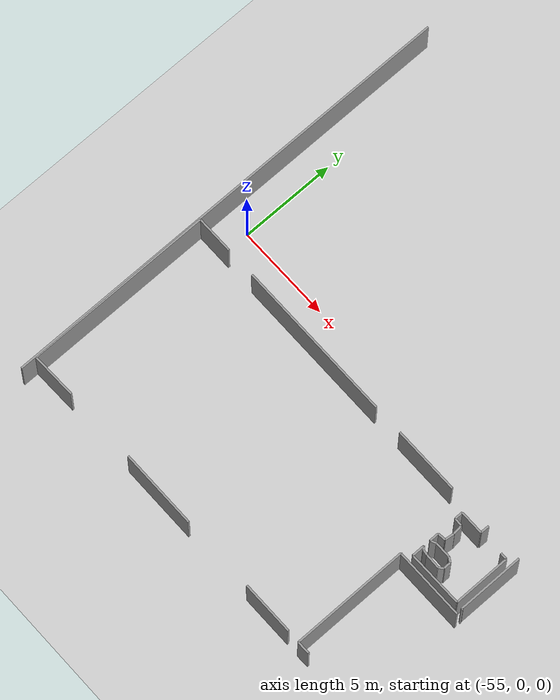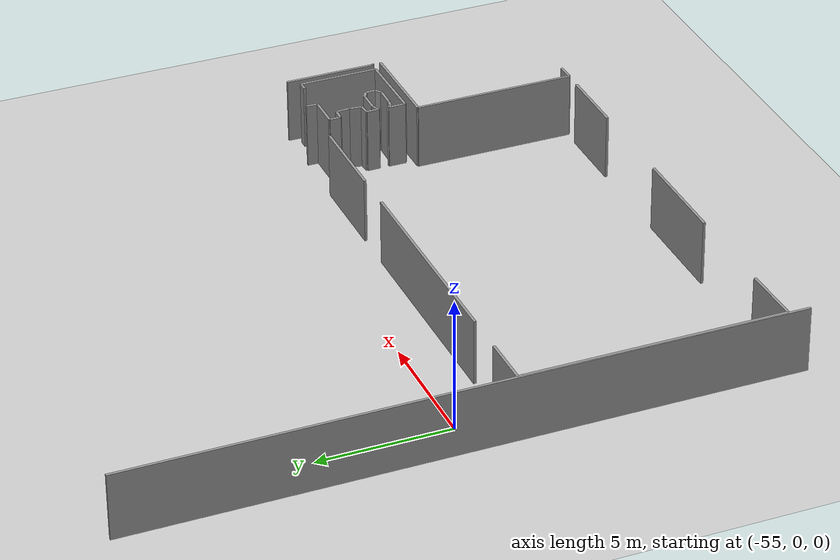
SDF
<sdf version="1.6">
 <world name="default">
  <model name="ground_plane">
   <static>1</static>
   <link name="link">
    <collision name="collision">
     <geometry><plane><normal>0 0 1</normal><size>100 100</size></plane></geometry>
     <surface><friction><ode><mu>100</mu><mu2>50</mu2></ode></friction></surface>
    </collision>
    <visual name="visual">
     <cast_shadows>0</cast_shadows>
     <geometry><plane><normal>0 0 1</normal><size>100 100</size></plane></geometry>
     <material>
      <script><uri>file://media/materials/scripts/gazebo.material</uri><name>Gazebo/Grey</name></script>
     </material>
    </visual>
   </link>
  </model>
  <model name="0510034692_Layout1">
   <static>1</static>
   <link name="Wall_15">
    <collision name="Wall_15_Collision">
     <geometry><box><size>9.90078531739 0.1 2.5</size></box></geometry>
     <pose>4.9503926587 0 1.25 0 0 0</pose>
    </collision>
    <visual name="Wall_15_Visual">
     <pose>4.9503926587 0 1.25 0 0 0</pose>
     <geometry><box><size>9.90078531739 0.1 2.5</size></box></geometry>
     <material>
      <script><uri>file://media/materials/scripts/gazebo.material</uri><name>Gazebo/Grey</name></script>
      <ambient>1 1 1 1</ambient>
     </material>
    </visual>
    <pose>0.0498674642077 -23.9970358678 0 0 0 1.57079632679</pose>
   </link>
   <link name="Wall_16">
    <collision name="Wall_16_Collision">
     <geometry><box><size>1.9633569305 0.1 2.5</size></box></geometry>
     <pose>0.981678465249 0 1.25 0 0 0</pose>
    </collision>
    <visual name="Wall_16_Visual">
     <pose>0.981678465249 0 1.25 0 0 0</pose>
     <geometry><box><size>1.9633569305 0.1 2.5</size></box></geometry>
     <material>
      <script><uri>file://media/materials/scripts/gazebo.material</uri><name>Gazebo/Grey</name></script>
      <ambient>1 1 1 1</ambient>
     </material>
    </visual>
    <pose>0.0498674642077 -14.0962505504 0 0 0 0.0</pose>
   </link>
   <link name="Wall_17">
    <collision name="Wall_17_Collision">
     <geometry><box><size>8.42544433433 0.1 2.5</size></box></geometry>
     <pose>4.21272216717 0 1.25 0 0 0</pose>
    </collision>
    <visual name="Wall_17_Visual">
     <pose>4.21272216717 0 1.25 0 0 0</pose>
     <geometry><box><size>8.42544433433 0.1 2.5</size></box></geometry>
     <material>
      <script><uri>file://media/materials/scripts/gazebo.material</uri><name>Gazebo/Grey</name></script>
      <ambient>1 1 1 1</ambient>
     </material>
    </visual>
    <pose>3.61126725535 -14.0962505504 0 0 0 0.0</pose>
   </link>
   <link name="Wall_18">
    <collision name="Wall_18_Collision">
     <geometry><box><size>3.50214252451 0.1 2.5</size></box></geometry>
     <pose>1.75107126226 0 1.25 0 0 0</pose>
    </collision>
    <visual name="Wall_18_Visual">
     <pose>1.75107126226 0 1.25 0 0 0</pose>
     <geometry><box><size>3.50214252451 0.1 2.5</size></box></geometry>
     <material>
      <script><uri>file://media/materials/scripts/gazebo.material</uri><name>Gazebo/Grey</name></script>
      <ambient>1 1 1 1</ambient>
     </material>
    </visual>
    <pose>13.6082346029 -14.0962505504 0 0 0 0.0</pose>
   </link>
   <link name="Wall_20">
    <collision name="Wall_20_Collision">
     <geometry><box><size>2.76897660036 0.1 2.5</size></box></geometry>
     <pose>1.38448830018 0 1.25 0 0 0</pose>
    </collision>
    <visual name="Wall_20_Visual">
     <pose>1.38448830018 0 1.25 0 0 0</pose>
     <geometry><box><size>2.76897660036 0.1 2.5</size></box></geometry>
     <material>
      <script><uri>file://media/materials/scripts/gazebo.material</uri><name>Gazebo/Grey</name></script>
      <ambient>1 1 1 1</ambient>
     </material>
    </visual>
    <pose>17.1103771275 -23.945138176 0 0 0 3.14159265359</pose>
   </link>
   <link name="Wall_21">
    <collision name="Wall_21_Collision">
     <geometry><box><size>4.11057634353 0.1 2.5</size></box></geometry>
     <pose>2.05528817177 0 1.25 0 0 0</pose>
    </collision>
    <visual name="Wall_21_Visual">
     <pose>2.05528817177 0 1.25 0 0 0</pose>
     <geometry><box><size>4.11057634353 0.1 2.5</size></box></geometry>
     <material>
      <script><uri>file://media/materials/scripts/gazebo.material</uri><name>Gazebo/Grey</name></script>
      <ambient>1 1 1 1</ambient>
     </material>
    </visual>
    <pose>10.4239495793 -23.945138176 0 0 0 3.14159265359</pose>
   </link>
   <link name="Wall_22">
    <collision name="Wall_22_Collision">
     <geometry><box><size>2.36578439888 0.1 2.5</size></box></geometry>
     <pose>1.18289219944 0 1.25 0 0 0</pose>
    </collision>
    <visual name="Wall_22_Visual">
     <pose>1.18289219944 0 1.25 0 0 0</pose>
     <geometry><box><size>2.36578439888 0.1 2.5</size></box></geometry>
     <material>
      <script><uri>file://media/materials/scripts/gazebo.material</uri><name>Gazebo/Grey</name></script>
      <ambient>1 1 1 1</ambient>
     </material>
    </visual>
    <pose>2.41508256047 -23.945138176 0 0 0 -3.11965411385</pose>
   </link>
   <link name="Wall_64">
    <collision name="Wall_64_Collision">
     <geometry><box><size>6.12748052568 0.1 2.5</size></box></geometry>
     <pose>3.06374026284 0 1.25 0 0 0</pose>
    </collision>
    <visual name="Wall_64_Visual">
     <pose>3.06374026284 0 1.25 0 0 0</pose>
     <geometry><box><size>6.12748052568 0.1 2.5</size></box></geometry>
     <material>
      <script><uri>file://media/materials/scripts/gazebo.material</uri><name>Gazebo/Grey</name></script>
      <ambient>1 1 1 1</ambient>
     </material>
    </visual>
    <pose>17.7987511563 -23.9681051252 0 0 0 1.57079632679</pose>
   </link>
   <link name="Wall_65">
    <collision name="Wall_65_Collision">
     <geometry><box><size>3.73308090837 0.1 2.5</size></box></geometry>
     <pose>1.86654045419 0 1.25 0 0 0</pose>
    </collision>
    <visual name="Wall_65_Visual">
     <pose>1.86654045419 0 1.25 0 0 0</pose>
     <geometry><box><size>3.73308090837 0.1 2.5</size></box></geometry>
     <material>
      <script><uri>file://media/materials/scripts/gazebo.material</uri><name>Gazebo/Grey</name></script>
      <ambient>1 1 1 1</ambient>
     </material>
    </visual>
    <pose>17.7987511563 -17.8406245995 0 0 0 0.0</pose>
   </link>
   <link name="Wall_71">
    <collision name="Wall_71_Collision">
     <geometry><box><size>0.668838914309 0.1 2.5</size></box></geometry>
     <pose>0.334419457155 0 1.25 0 0 0</pose>
    </collision>
    <visual name="Wall_71_Visual">
     <pose>0.334419457155 0 1.25 0 0 0</pose>
     <geometry><box><size>0.668838914309 0.1 2.5</size></box></geometry>
     <material>
      <script><uri>file://media/materials/scripts/gazebo.material</uri><name>Gazebo/Grey</name></script>
      <ambient>1 1 1 1</ambient>
     </material>
    </visual>
    <pose>18.4674573557 -23.9547817569 0 0 0 -3.12167119071</pose>
   </link>
   <link name="Wall_72">
    <collision name="Wall_72_Collision">
     <geometry><box><size>3.45988841362 0.1 2.5</size></box></geometry>
     <pose>1.72994420681 0 1.25 0 0 0</pose>
    </collision>
    <visual name="Wall_72_Visual">
     <pose>1.72994420681 0 1.25 0 0 0</pose>
     <geometry><box><size>3.45988841362 0.1 2.5</size></box></geometry>
     <material>
      <script><uri>file://media/materials/scripts/gazebo.material</uri><name>Gazebo/Grey</name></script>
      <ambient>1 1 1 1</ambient>
     </material>
    </visual>
    <pose>21.483994828 -17.5359635777 0 0 0 1.57079632679</pose>
   </link>
   <link name="Wall_79">
    <collision name="Wall_79_Collision">
     <geometry><box><size>0.0748601243903 0.1 2.5</size></box></geometry>
     <pose>0.0374300621951 0 1.25 0 0 0</pose>
    </collision>
    <visual name="Wall_79_Visual">
     <pose>0.0374300621951 0 1.25 0 0 0</pose>
     <geometry><box><size>0.0748601243903 0.1 2.5</size></box></geometry>
     <material>
      <script><uri>file://media/materials/scripts/gazebo.material</uri><name>Gazebo/Grey</name></script>
      <ambient>1 1 1 1</ambient>
     </material>
    </visual>
    <pose>21.5503578911 -17.5013228201 0 0 0 -2.66050935902</pose>
   </link>
   <link name="Wall_80">
    <collision name="Wall_80_Collision">
     <geometry><box><size>0.668833088649 0.1 2.5</size></box></geometry>
     <pose>0.334416544324 0 1.25 0 0 0</pose>
    </collision>
    <visual name="Wall_80_Visual">
     <pose>0.334416544324 0 1.25 0 0 0</pose>
     <geometry><box><size>0.668833088649 0.1 2.5</size></box></geometry>
     <material>
      <script><uri>file://media/materials/scripts/gazebo.material</uri><name>Gazebo/Grey</name></script>
      <ambient>1 1 1 1</ambient>
     </material>
    </visual>
    <pose>18.2328391844 -17.5053832752 0 0 0 1.57079632679</pose>
   </link>
   <link name="Wall_81">
    <collision name="Wall_81_Collision">
     <geometry><box><size>0.196521543762 0.1 2.5</size></box></geometry>
     <pose>0.098260771881 0 1.25 0 0 0</pose>
    </collision>
    <visual name="Wall_81_Visual">
     <pose>0.098260771881 0 1.25 0 0 0</pose>
     <geometry><box><size>0.196521543762 0.1 2.5</size></box></geometry>
     <material>
      <script><uri>file://media/materials/scripts/gazebo.material</uri><name>Gazebo/Grey</name></script>
      <ambient>1 1 1 1</ambient>
     </material>
    </visual>
    <pose>18.2328391844 -16.8365501866 0 0 0 -0.831070219661</pose>
   </link>
   <link name="Wall_82">
    <collision name="Wall_82_Collision">
     <geometry><box><size>0.273911716556 0.1 2.5</size></box></geometry>
     <pose>0.136955858278 0 1.25 0 0 0</pose>
    </collision>
    <visual name="Wall_82_Visual">
     <pose>0.136955858278 0 1.25 0 0 0</pose>
     <geometry><box><size>0.273911716556 0.1 2.5</size></box></geometry>
     <material>
      <script><uri>file://media/materials/scripts/gazebo.material</uri><name>Gazebo/Grey</name></script>
      <ambient>1 1 1 1</ambient>
     </material>
    </visual>
    <pose>18.3653115321 -16.9817114564 0 0 0 -0.138490359188</pose>
   </link>
   <link name="Wall_83">
    <collision name="Wall_83_Collision">
     <geometry><box><size>0.757257154565 0.1 2.5</size></box></geometry>
     <pose>0.378628577282 0 1.25 0 0 0</pose>
    </collision>
    <visual name="Wall_83_Visual">
     <pose>0.378628577282 0 1.25 0 0 0</pose>
     <geometry><box><size>0.757257154565 0.1 2.5</size></box></geometry>
     <material>
      <script><uri>file://media/materials/scripts/gazebo.material</uri><name>Gazebo/Grey</name></script>
      <ambient>1 1 1 1</ambient>
     </material>
    </visual>
    <pose>18.6366006885 -17.0195244446 0 0 0 -0.0249696668334</pose>
   </link>
   <link name="Wall_84">
    <collision name="Wall_84_Collision">
     <geometry><box><size>0.273049124769 0.1 2.5</size></box></geometry>
     <pose>0.136524562384 0 1.25 0 0 0</pose>
    </collision>
    <visual name="Wall_84_Visual">
     <pose>0.136524562384 0 1.25 0 0 0</pose>
     <geometry><box><size>0.273049124769 0.1 2.5</size></box></geometry>
     <material>
      <script><uri>file://media/materials/scripts/gazebo.material</uri><name>Gazebo/Grey</name></script>
      <ambient>1 1 1 1</ambient>
     </material>
    </visual>
    <pose>19.3936217864 -17.0384309386 0 0 0 0.703484929254</pose>
   </link>
   <link name="Wall_85">
    <collision name="Wall_85_Collision">
     <geometry><box><size>0.372382338041 0.1 2.5</size></box></geometry>
     <pose>0.18619116902 0 1.25 0 0 0</pose>
    </collision>
    <visual name="Wall_85_Visual">
     <pose>0.18619116902 0 1.25 0 0 0</pose>
     <geometry><box><size>0.372382338041 0.1 2.5</size></box></geometry>
     <material>
      <script><uri>file://media/materials/scripts/gazebo.material</uri><name>Gazebo/Grey</name></script>
      <ambient>1 1 1 1</ambient>
     </material>
    </visual>
    <pose>19.6018469995 -16.8618011417 0 0 0 1.60487790829</pose>
   </link>
   <link name="Wall_86">
    <collision name="Wall_86_Collision">
     <geometry><box><size>0.280222917237 0.1 2.5</size></box></geometry>
     <pose>0.140111458619 0 1.25 0 0 0</pose>
    </collision>
    <visual name="Wall_86_Visual">
     <pose>0.140111458619 0 1.25 0 0 0</pose>
     <geometry><box><size>0.280222917237 0.1 2.5</size></box></geometry>
     <material>
      <script><uri>file://media/materials/scripts/gazebo.material</uri><name>Gazebo/Grey</name></script>
      <ambient>1 1 1 1</ambient>
     </material>
    </visual>
    <pose>19.5891580773 -16.4896350539 0 0 0 2.59705731106</pose>
   </link>
   <link name="Wall_87">
    <collision name="Wall_87_Collision">
     <geometry><box><size>0.832797173523 0.1 2.5</size></box></geometry>
     <pose>0.416398586762 0 1.25 0 0 0</pose>
    </collision>
    <visual name="Wall_87_Visual">
     <pose>0.416398586762 0 1.25 0 0 0</pose>
     <geometry><box><size>0.832797173523 0.1 2.5</size></box></geometry>
     <material>
      <script><uri>file://media/materials/scripts/gazebo.material</uri><name>Gazebo/Grey</name></script>
      <ambient>1 1 1 1</ambient>
     </material>
    </visual>
    <pose>19.3494643371 -16.3444737841 0 0 0 3.13412669449</pose>
   </link>
   <link name="Wall_88">
    <collision name="Wall_88_Collision">
     <geometry><box><size>0.307504320536 0.1 2.5</size></box></geometry>
     <pose>0.153752160268 0 1.25 0 0 0</pose>
    </collision>
    <visual name="Wall_88_Visual">
     <pose>0.153752160268 0 1.25 0 0 0</pose>
     <geometry><box><size>0.307504320536 0.1 2.5</size></box></geometry>
     <material>
      <script><uri>file://media/materials/scripts/gazebo.material</uri><name>Gazebo/Grey</name></script>
      <ambient>1 1 1 1</ambient>
     </material>
    </visual>
    <pose>18.5166903738 -16.3382562122 0 0 0 -2.69621543664</pose>
   </link>
   <link name="Wall_89">
    <collision name="Wall_89_Collision">
     <geometry><box><size>0.485731941443 0.1 2.5</size></box></geometry>
     <pose>0.242865970722 0 1.25 0 0 0</pose>
    </collision>
    <visual name="Wall_89_Visual">
     <pose>0.242865970722 0 1.25 0 0 0</pose>
     <geometry><box><size>0.485731941443 0.1 2.5</size></box></geometry>
     <material>
      <script><uri>file://media/materials/scripts/gazebo.material</uri><name>Gazebo/Grey</name></script>
      <ambient>1 1 1 1</ambient>
     </material>
    </visual>
    <pose>18.2391836455 -16.4707285598 0 0 0 1.57079632679</pose>
   </link>
   <link name="Wall_90">
    <collision name="Wall_90_Collision">
     <geometry><box><size>0.411730830791 0.1 2.5</size></box></geometry>
     <pose>0.205865415396 0 1.25 0 0 0</pose>
    </collision>
    <visual name="Wall_90_Visual">
     <pose>0.205865415396 0 1.25 0 0 0</pose>
     <geometry><box><size>0.411730830791 0.1 2.5</size></box></geometry>
     <material>
      <script><uri>file://media/materials/scripts/gazebo.material</uri><name>Gazebo/Grey</name></script>
      <ambient>1 1 1 1</ambient>
     </material>
    </visual>
    <pose>18.2391836455 -15.9849966184 0 0 0 0.0922781893595</pose>
   </link>
   <link name="Wall_91">
    <collision name="Wall_91_Collision">
     <geometry><box><size>0.477353981055 0.1 2.5</size></box></geometry>
     <pose>0.238676990527 0 1.25 0 0 0</pose>
    </collision>
    <visual name="Wall_91_Visual">
     <pose>0.238676990527 0 1.25 0 0 0</pose>
     <geometry><box><size>0.477353981055 0.1 2.5</size></box></geometry>
     <material>
      <script><uri>file://media/materials/scripts/gazebo.material</uri><name>Gazebo/Grey</name></script>
      <ambient>1 1 1 1</ambient>
     </material>
    </visual>
    <pose>18.6491627215 -15.9470567411 0 0 0 1.43829749172</pose>
   </link>
   <link name="Wall_92">
    <collision name="Wall_92_Collision">
     <geometry><box><size>0.507146520584 0.1 2.5</size></box></geometry>
     <pose>0.253573260292 0 1.25 0 0 0</pose>
    </collision>
    <visual name="Wall_92_Visual">
     <pose>0.253573260292 0 1.25 0 0 0</pose>
     <geometry><box><size>0.507146520584 0.1 2.5</size></box></geometry>
     <material>
      <script><uri>file://media/materials/scripts/gazebo.material</uri><name>Gazebo/Grey</name></script>
      <ambient>1 1 1 1</ambient>
     </material>
    </visual>
    <pose>18.7122266648 -15.4738868326 0 0 0 1.67029070688</pose>
   </link>
   <link name="Wall_93">
    <collision name="Wall_93_Collision">
     <geometry><box><size>0.429754931246 0.1 2.5</size></box></geometry>
     <pose>0.214877465623 0 1.25 0 0 0</pose>
    </collision>
    <visual name="Wall_93_Visual">
     <pose>0.214877465623 0 1.25 0 0 0</pose>
     <geometry><box><size>0.429754931246 0.1 2.5</size></box></geometry>
     <material>
      <script><uri>file://media/materials/scripts/gazebo.material</uri><name>Gazebo/Grey</name></script>
      <ambient>1 1 1 1</ambient>
     </material>
    </visual>
    <pose>18.6618516437 -14.9692483971 0 0 0 3.08280215441</pose>
   </link>
   <link name="Wall_94">
    <collision name="Wall_94_Collision">
     <geometry><box><size>0.419876742049 0.1 2.5</size></box></geometry>
     <pose>0.209938371025 0 1.25 0 0 0</pose>
    </collision>
    <visual name="Wall_94_Visual">
     <pose>0.209938371025 0 1.25 0 0 0</pose>
     <geometry><box><size>0.419876742049 0.1 2.5</size></box></geometry>
     <material>
      <script><uri>file://media/materials/scripts/gazebo.material</uri><name>Gazebo/Grey</name></script>
      <ambient>1 1 1 1</ambient>
     </material>
    </visual>
    <pose>18.2328391844 -14.9439974419 0 0 0 1.57200515062</pose>
   </link>
   <link name="Wall_95">
    <collision name="Wall_95_Collision">
     <geometry><box><size>1.24085515725 0.1 2.5</size></box></geometry>
     <pose>0.620427578625 0 1.25 0 0 0</pose>
    </collision>
    <visual name="Wall_95_Visual">
     <pose>0.620427578625 0 1.25 0 0 0</pose>
     <geometry><box><size>1.24085515725 0.1 2.5</size></box></geometry>
     <material>
      <script><uri>file://media/materials/scripts/gazebo.material</uri><name>Gazebo/Grey</name></script>
      <ambient>1 1 1 1</ambient>
     </material>
    </visual>
    <pose>18.2323316275 -14.5241210066 0 0 0 -0.00296552970526</pose>
   </link>
   <link name="Wall_96">
    <collision name="Wall_96_Collision">
     <geometry><box><size>0.454574735706 0.1 2.5</size></box></geometry>
     <pose>0.227287367853 0 1.25 0 0 0</pose>
    </collision>
    <visual name="Wall_96_Visual">
     <pose>0.227287367853 0 1.25 0 0 0</pose>
     <geometry><box><size>0.454574735706 0.1 2.5</size></box></geometry>
     <material>
      <script><uri>file://media/materials/scripts/gazebo.material</uri><name>Gazebo/Grey</name></script>
      <ambient>1 1 1 1</ambient>
     </material>
    </visual>
    <pose>19.4731813285 -14.5278007941 0 0 0 1.55488477192</pose>
   </link>
   <link name="Wall_100">
    <collision name="Wall_100_Collision">
     <geometry><box><size>0.357827605765 0.1 2.5</size></box></geometry>
     <pose>0.178913802883 0 1.25 0 0 0</pose>
    </collision>
    <visual name="Wall_100_Visual">
     <pose>0.178913802883 0 1.25 0 0 0</pose>
     <geometry><box><size>0.357827605765 0.1 2.5</size></box></geometry>
     <material>
      <script><uri>file://media/materials/scripts/gazebo.material</uri><name>Gazebo/Grey</name></script>
      <ambient>1 1 1 1</ambient>
     </material>
    </visual>
    <pose>20.7675782811 -14.5058489587 0 0 0 0.0</pose>
   </link>
   <link name="Wall_101">
    <collision name="Wall_101_Collision">
     <geometry><box><size>2.97999337638 0.1 2.5</size></box></geometry>
     <pose>1.48999668819 0 1.25 0 0 0</pose>
    </collision>
    <visual name="Wall_101_Visual">
     <pose>1.48999668819 0 1.25 0 0 0</pose>
     <geometry><box><size>2.97999337638 0.1 2.5</size></box></geometry>
     <material>
      <script><uri>file://media/materials/scripts/gazebo.material</uri><name>Gazebo/Grey</name></script>
      <ambient>1 1 1 1</ambient>
     </material>
    </visual>
    <pose>21.1254058869 -14.5058489587 0 0 0 -1.57079632679</pose>
   </link>
   <link name="Wall_102">
    <collision name="Wall_102_Collision">
     <geometry><box><size>2.89263270684 0.1 2.5</size></box></geometry>
     <pose>1.44631635342 0 1.25 0 0 0</pose>
    </collision>
    <visual name="Wall_102_Visual">
     <pose>1.44631635342 0 1.25 0 0 0</pose>
     <geometry><box><size>2.89263270684 0.1 2.5</size></box></geometry>
     <material>
      <script><uri>file://media/materials/scripts/gazebo.material</uri><name>Gazebo/Grey</name></script>
      <ambient>1 1 1 1</ambient>
     </material>
    </visual>
    <pose>21.1254058869 -17.4858423351 0 0 0 -3.1348371852</pose>
   </link>
   <link name="Wall_400">
    <collision name="Wall_400_Collision">
     <geometry><box><size>24.8296829419 0.1 2.5</size></box></geometry>
     <pose>12.414841471 0 1.25 0 0 0</pose>
    </collision>
    <visual name="Wall_400_Visual">
     <pose>12.414841471 0 1.25 0 0 0</pose>
     <geometry><box><size>24.8296829419 0.1 2.5</size></box></geometry>
     <material>
      <script><uri>file://media/materials/scripts/gazebo.material</uri><name>Gazebo/Grey</name></script>
      <ambient>1 1 1 1</ambient>
     </material>
    </visual>
    <pose>0.0 -24.8296829419 0 0 0 1.57079632679</pose>
   </link>
   <pose>-56.4 12.4296829419 0 0 0 0</pose>
  </model>
 </world>
</sdf>
